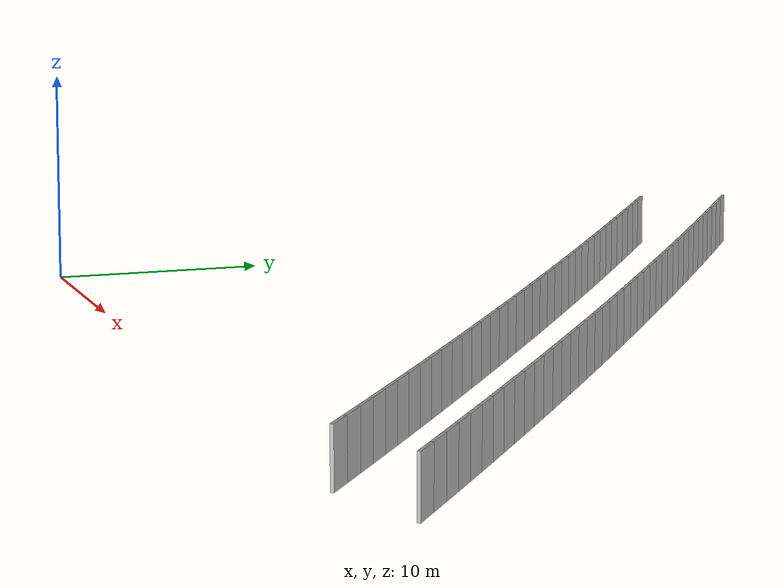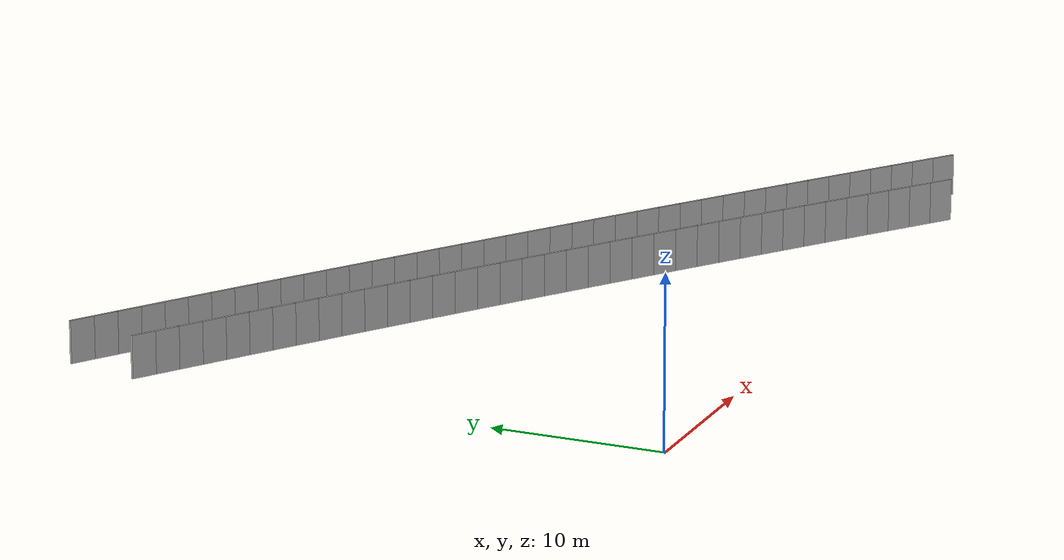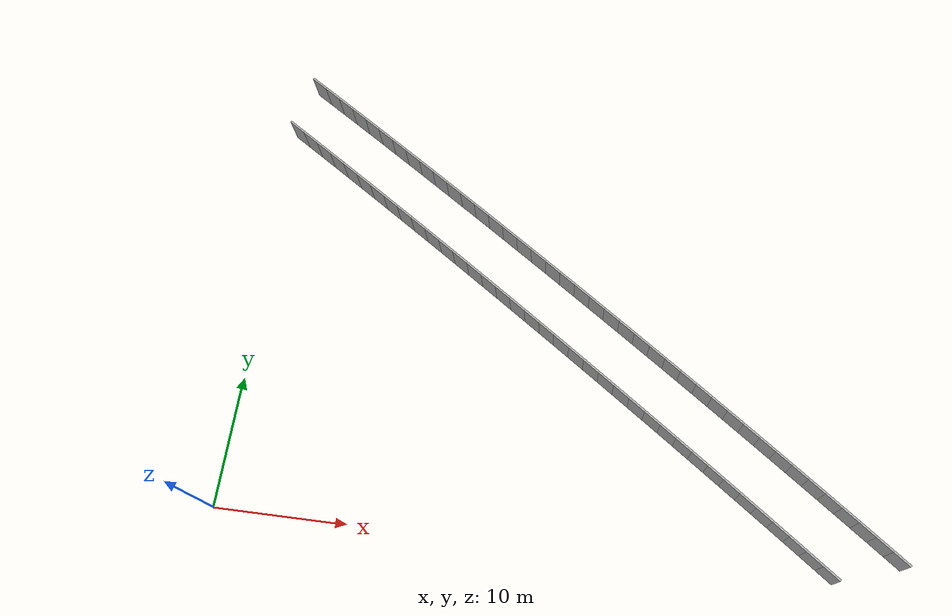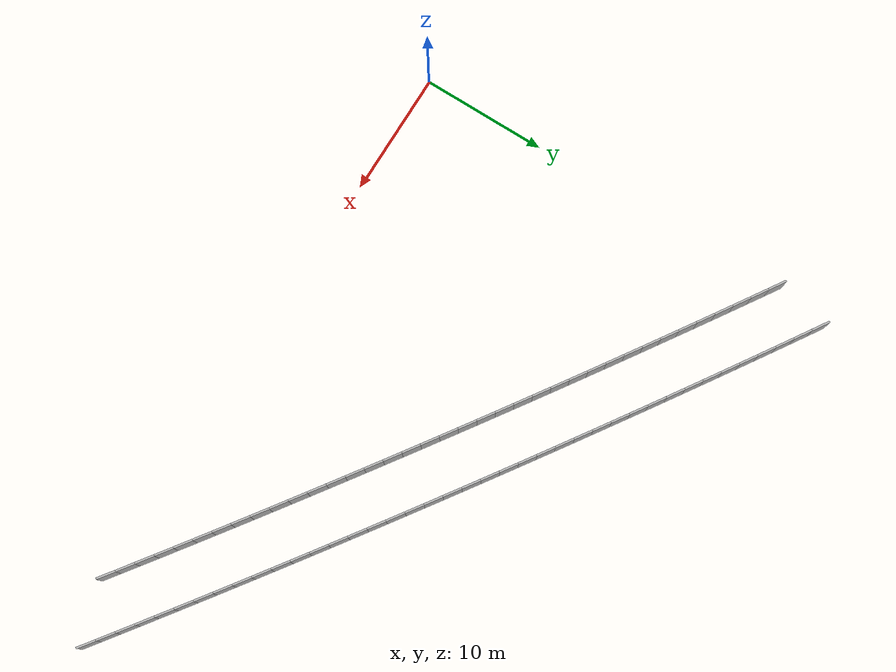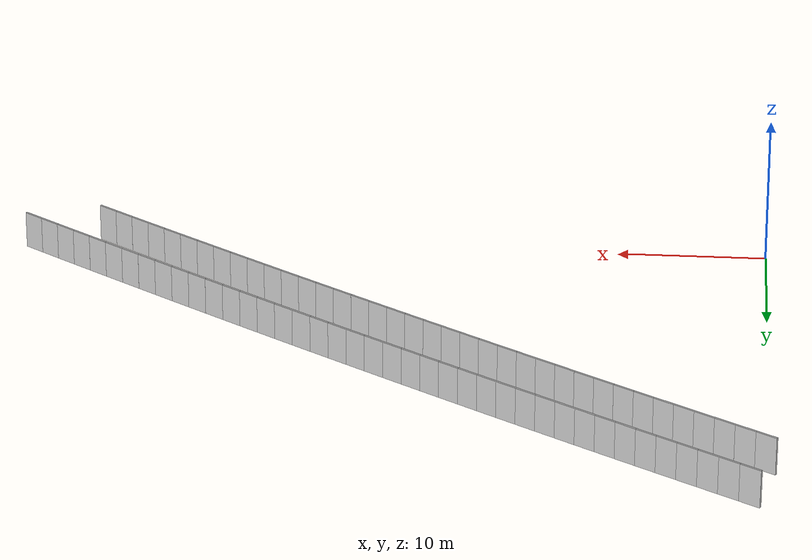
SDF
<?xml version="1.0" ?>
<sdf version="1.6">
  <model name="sps_3743">
    <pose frame="">0 0 0 0 -0 0</pose>
    <static>1</static>
    <self_collide>0</self_collide>
    <allow_auto_disable>0</allow_auto_disable>
    <link name="Wall10517">
      <kinematic>0</kinematic>
      <gravity>1</gravity>
      <self_collide>0</self_collide>
      <collision name="collision">
        <geometry>
          <box>
            <size>1.49651 0.15 2.5</size>
          </box>
        </geometry>
        <pose frame="">0 0 0 0 -0 0</pose>
      </collision>
      <visual name="visual">
        <geometry>
          <box>
            <size>1.49651 0.15 2.5</size>
          </box>
        </geometry>
        <pose frame="">0 0 0 0 -0 0</pose>
        <cast_shadows>1</cast_shadows>
        <transparency>0.0</transparency>
      </visual>
      <pose frame="">44.7234 0.544478 1.25 0 -0 2.51361</pose>
    </link>
    <link name="Wall10518">
      <kinematic>0</kinematic>
      <gravity>1</gravity>
      <self_collide>0</self_collide>
      <collision name="collision">
        <geometry>
          <box>
            <size>1.49657 0.15 2.5</size>
          </box>
        </geometry>
        <pose frame="">0 0 0 0 -0 0</pose>
      </collision>
      <visual name="visual">
        <geometry>
          <box>
            <size>1.49657 0.15 2.5</size>
          </box>
        </geometry>
        <pose frame="">0 0 0 0 -0 0</pose>
        <cast_shadows>1</cast_shadows>
        <transparency>0.0</transparency>
      </visual>
      <pose frame="">43.5117 1.42277 1.25 0 -0 2.51516</pose>
    </link>
    <link name="Wall10519">
      <kinematic>0</kinematic>
      <gravity>1</gravity>
      <self_collide>0</self_collide>
      <collision name="collision">
        <geometry>
          <box>
            <size>1.49641 0.15 2.5</size>
          </box>
        </geometry>
        <pose frame="">0 0 0 0 -0 0</pose>
      </collision>
      <visual name="visual">
        <geometry>
          <box>
            <size>1.49641 0.15 2.5</size>
          </box>
        </geometry>
        <pose frame="">0 0 0 0 -0 0</pose>
        <cast_shadows>1</cast_shadows>
        <transparency>0.0</transparency>
      </visual>
      <pose frame="">42.2987 2.29918 1.25 0 -0 2.51669</pose>
    </link>
    <link name="Wall10520">
      <kinematic>0</kinematic>
      <gravity>1</gravity>
      <self_collide>0</self_collide>
      <collision name="collision">
        <geometry>
          <box>
            <size>1.49652 0.15 2.5</size>
          </box>
        </geometry>
        <pose frame="">0 0 0 0 -0 0</pose>
      </collision>
      <visual name="visual">
        <geometry>
          <box>
            <size>1.49652 0.15 2.5</size>
          </box>
        </geometry>
        <pose frame="">0 0 0 0 -0 0</pose>
        <cast_shadows>1</cast_shadows>
        <transparency>0.0</transparency>
      </visual>
      <pose frame="">41.0843 3.1736 1.25 0 -0 2.5184</pose>
    </link>
    <link name="Wall10521">
      <kinematic>0</kinematic>
      <gravity>1</gravity>
      <self_collide>0</self_collide>
      <collision name="collision">
        <geometry>
          <box>
            <size>1.4966 0.15 2.5</size>
          </box>
        </geometry>
        <pose frame="">0 0 0 0 -0 0</pose>
      </collision>
      <visual name="visual">
        <geometry>
          <box>
            <size>1.4966 0.15 2.5</size>
          </box>
        </geometry>
        <pose frame="">0 0 0 0 -0 0</pose>
        <cast_shadows>1</cast_shadows>
        <transparency>0.0</transparency>
      </visual>
      <pose frame="">39.8683 4.0461 1.25 0 -0 2.51994</pose>
    </link>
    <link name="Wall10522">
      <kinematic>0</kinematic>
      <gravity>1</gravity>
      <self_collide>0</self_collide>
      <collision name="collision">
        <geometry>
          <box>
            <size>1.4964 0.15 2.5</size>
          </box>
        </geometry>
        <pose frame="">0 0 0 0 -0 0</pose>
      </collision>
      <visual name="visual">
        <geometry>
          <box>
            <size>1.4964 0.15 2.5</size>
          </box>
        </geometry>
        <pose frame="">0 0 0 0 -0 0</pose>
        <cast_shadows>1</cast_shadows>
        <transparency>0.0</transparency>
      </visual>
      <pose frame="">38.6511 4.9167 1.25 0 -0 2.52146</pose>
    </link>
    <link name="Wall10523">
      <kinematic>0</kinematic>
      <gravity>1</gravity>
      <self_collide>0</self_collide>
      <collision name="collision">
        <geometry>
          <box>
            <size>1.49654 0.15 2.5</size>
          </box>
        </geometry>
        <pose frame="">0 0 0 0 -0 0</pose>
      </collision>
      <visual name="visual">
        <geometry>
          <box>
            <size>1.49654 0.15 2.5</size>
          </box>
        </geometry>
        <pose frame="">0 0 0 0 -0 0</pose>
        <cast_shadows>1</cast_shadows>
        <transparency>0.0</transparency>
      </visual>
      <pose frame="">37.4325 5.78529 1.25 0 -0 2.52323</pose>
    </link>
    <link name="Wall10524">
      <kinematic>0</kinematic>
      <gravity>1</gravity>
      <self_collide>0</self_collide>
      <collision name="collision">
        <geometry>
          <box>
            <size>1.49656 0.15 2.5</size>
          </box>
        </geometry>
        <pose frame="">0 0 0 0 -0 0</pose>
      </collision>
      <visual name="visual">
        <geometry>
          <box>
            <size>1.49656 0.15 2.5</size>
          </box>
        </geometry>
        <pose frame="">0 0 0 0 -0 0</pose>
        <cast_shadows>1</cast_shadows>
        <transparency>0.0</transparency>
      </visual>
      <pose frame="">36.2126 6.65217 1.25 0 -0 2.52433</pose>
    </link>
    <link name="Wall10525">
      <kinematic>0</kinematic>
      <gravity>1</gravity>
      <self_collide>0</self_collide>
      <collision name="collision">
        <geometry>
          <box>
            <size>1.49648 0.15 2.5</size>
          </box>
        </geometry>
        <pose frame="">0 0 0 0 -0 0</pose>
      </collision>
      <visual name="visual">
        <geometry>
          <box>
            <size>1.49648 0.15 2.5</size>
          </box>
        </geometry>
        <pose frame="">0 0 0 0 -0 0</pose>
        <cast_shadows>1</cast_shadows>
        <transparency>0.0</transparency>
      </visual>
      <pose frame="">34.9914 7.5172 1.25 0 -0 2.52625</pose>
    </link>
    <link name="Wall10526">
      <kinematic>0</kinematic>
      <gravity>1</gravity>
      <self_collide>0</self_collide>
      <collision name="collision">
        <geometry>
          <box>
            <size>1.49657 0.15 2.5</size>
          </box>
        </geometry>
        <pose frame="">0 0 0 0 -0 0</pose>
      </collision>
      <visual name="visual">
        <geometry>
          <box>
            <size>1.49657 0.15 2.5</size>
          </box>
        </geometry>
        <pose frame="">0 0 0 0 -0 0</pose>
        <cast_shadows>1</cast_shadows>
        <transparency>0.0</transparency>
      </visual>
      <pose frame="">33.7688 8.38011 1.25 0 -0 2.52779</pose>
    </link>
    <link name="Wall10527">
      <kinematic>0</kinematic>
      <gravity>1</gravity>
      <self_collide>0</self_collide>
      <collision name="collision">
        <geometry>
          <box>
            <size>1.49645 0.15 2.5</size>
          </box>
        </geometry>
        <pose frame="">0 0 0 0 -0 0</pose>
      </collision>
      <visual name="visual">
        <geometry>
          <box>
            <size>1.49645 0.15 2.5</size>
          </box>
        </geometry>
        <pose frame="">0 0 0 0 -0 0</pose>
        <cast_shadows>1</cast_shadows>
        <transparency>0.0</transparency>
      </visual>
      <pose frame="">32.5447 9.24101 1.25 0 -0 2.52953</pose>
    </link>
    <link name="Wall10528">
      <kinematic>0</kinematic>
      <gravity>1</gravity>
      <self_collide>0</self_collide>
      <collision name="collision">
        <geometry>
          <box>
            <size>1.49651 0.15 2.5</size>
          </box>
        </geometry>
        <pose frame="">0 0 0 0 -0 0</pose>
      </collision>
      <visual name="visual">
        <geometry>
          <box>
            <size>1.49651 0.15 2.5</size>
          </box>
        </geometry>
        <pose frame="">0 0 0 0 -0 0</pose>
        <cast_shadows>1</cast_shadows>
        <transparency>0.0</transparency>
      </visual>
      <pose frame="">31.3193 10.1 1.25 0 -0 2.5309</pose>
    </link>
    <link name="Wall10529">
      <kinematic>0</kinematic>
      <gravity>1</gravity>
      <self_collide>0</self_collide>
      <collision name="collision">
        <geometry>
          <box>
            <size>1.49659 0.15 2.5</size>
          </box>
        </geometry>
        <pose frame="">0 0 0 0 -0 0</pose>
      </collision>
      <visual name="visual">
        <geometry>
          <box>
            <size>1.49659 0.15 2.5</size>
          </box>
        </geometry>
        <pose frame="">0 0 0 0 -0 0</pose>
        <cast_shadows>1</cast_shadows>
        <transparency>0.0</transparency>
      </visual>
      <pose frame="">30.0925 10.9571 1.25 0 -0 2.53267</pose>
    </link>
    <link name="Wall10530">
      <kinematic>0</kinematic>
      <gravity>1</gravity>
      <self_collide>0</self_collide>
      <collision name="collision">
        <geometry>
          <box>
            <size>1.49644 0.15 2.5</size>
          </box>
        </geometry>
        <pose frame="">0 0 0 0 -0 0</pose>
      </collision>
      <visual name="visual">
        <geometry>
          <box>
            <size>1.49644 0.15 2.5</size>
          </box>
        </geometry>
        <pose frame="">0 0 0 0 -0 0</pose>
        <cast_shadows>1</cast_shadows>
        <transparency>0.0</transparency>
      </visual>
      <pose frame="">28.8642 11.8121 1.25 0 -0 2.53424</pose>
    </link>
    <link name="Wall10531">
      <kinematic>0</kinematic>
      <gravity>1</gravity>
      <self_collide>0</self_collide>
      <collision name="collision">
        <geometry>
          <box>
            <size>1.49653 0.15 2.5</size>
          </box>
        </geometry>
        <pose frame="">0 0 0 0 -0 0</pose>
      </collision>
      <visual name="visual">
        <geometry>
          <box>
            <size>1.49653 0.15 2.5</size>
          </box>
        </geometry>
        <pose frame="">0 0 0 0 -0 0</pose>
        <cast_shadows>1</cast_shadows>
        <transparency>0.0</transparency>
      </visual>
      <pose frame="">27.6348 12.6652 1.25 0 -0 2.53573</pose>
    </link>
    <link name="Wall10532">
      <kinematic>0</kinematic>
      <gravity>1</gravity>
      <self_collide>0</self_collide>
      <collision name="collision">
        <geometry>
          <box>
            <size>1.4964 0.15 2.5</size>
          </box>
        </geometry>
        <pose frame="">0 0 0 0 -0 0</pose>
      </collision>
      <visual name="visual">
        <geometry>
          <box>
            <size>1.4964 0.15 2.5</size>
          </box>
        </geometry>
        <pose frame="">0 0 0 0 -0 0</pose>
        <cast_shadows>1</cast_shadows>
        <transparency>0.0</transparency>
      </visual>
      <pose frame="">26.404 13.5164 1.25 0 -0 2.53736</pose>
    </link>
    <link name="Wall10533">
      <kinematic>0</kinematic>
      <gravity>1</gravity>
      <self_collide>0</self_collide>
      <collision name="collision">
        <geometry>
          <box>
            <size>1.49655 0.15 2.5</size>
          </box>
        </geometry>
        <pose frame="">0 0 0 0 -0 0</pose>
      </collision>
      <visual name="visual">
        <geometry>
          <box>
            <size>1.49655 0.15 2.5</size>
          </box>
        </geometry>
        <pose frame="">0 0 0 0 -0 0</pose>
        <cast_shadows>1</cast_shadows>
        <transparency>0.0</transparency>
      </visual>
      <pose frame="">25.1717 14.3656 1.25 0 -0 2.53901</pose>
    </link>
    <link name="Wall10534">
      <kinematic>0</kinematic>
      <gravity>1</gravity>
      <self_collide>0</self_collide>
      <collision name="collision">
        <geometry>
          <box>
            <size>1.49656 0.15 2.5</size>
          </box>
        </geometry>
        <pose frame="">0 0 0 0 -0 0</pose>
      </collision>
      <visual name="visual">
        <geometry>
          <box>
            <size>1.49656 0.15 2.5</size>
          </box>
        </geometry>
        <pose frame="">0 0 0 0 -0 0</pose>
        <cast_shadows>1</cast_shadows>
        <transparency>0.0</transparency>
      </visual>
      <pose frame="">23.9382 15.2129 1.25 0 -0 2.54045</pose>
    </link>
    <link name="Wall10535">
      <kinematic>0</kinematic>
      <gravity>1</gravity>
      <self_collide>0</self_collide>
      <collision name="collision">
        <geometry>
          <box>
            <size>1.49654 0.15 2.5</size>
          </box>
        </geometry>
        <pose frame="">0 0 0 0 -0 0</pose>
      </collision>
      <visual name="visual">
        <geometry>
          <box>
            <size>1.49654 0.15 2.5</size>
          </box>
        </geometry>
        <pose frame="">0 0 0 0 -0 0</pose>
        <cast_shadows>1</cast_shadows>
        <transparency>0.0</transparency>
      </visual>
      <pose frame="">22.7033 16.0583 1.25 0 -0 2.54212</pose>
    </link>
    <link name="Wall10536">
      <kinematic>0</kinematic>
      <gravity>1</gravity>
      <self_collide>0</self_collide>
      <collision name="collision">
        <geometry>
          <box>
            <size>1.49645 0.15 2.5</size>
          </box>
        </geometry>
        <pose frame="">0 0 0 0 -0 0</pose>
      </collision>
      <visual name="visual">
        <geometry>
          <box>
            <size>1.49645 0.15 2.5</size>
          </box>
        </geometry>
        <pose frame="">0 0 0 0 -0 0</pose>
        <cast_shadows>1</cast_shadows>
        <transparency>0.0</transparency>
      </visual>
      <pose frame="">21.4671 16.9017 1.25 0 -0 2.54366</pose>
    </link>
    <link name="Wall10537">
      <kinematic>0</kinematic>
      <gravity>1</gravity>
      <self_collide>0</self_collide>
      <collision name="collision">
        <geometry>
          <box>
            <size>1.49648 0.15 2.5</size>
          </box>
        </geometry>
        <pose frame="">0 0 0 0 -0 0</pose>
      </collision>
      <visual name="visual">
        <geometry>
          <box>
            <size>1.49648 0.15 2.5</size>
          </box>
        </geometry>
        <pose frame="">0 0 0 0 -0 0</pose>
        <cast_shadows>1</cast_shadows>
        <transparency>0.0</transparency>
      </visual>
      <pose frame="">20.2295 17.7431 1.25 0 -0 2.5453</pose>
    </link>
    <link name="Wall10538">
      <kinematic>0</kinematic>
      <gravity>1</gravity>
      <self_collide>0</self_collide>
      <collision name="collision">
        <geometry>
          <box>
            <size>1.4965 0.15 2.5</size>
          </box>
        </geometry>
        <pose frame="">0 0 0 0 -0 0</pose>
      </collision>
      <visual name="visual">
        <geometry>
          <box>
            <size>1.4965 0.15 2.5</size>
          </box>
        </geometry>
        <pose frame="">0 0 0 0 -0 0</pose>
        <cast_shadows>1</cast_shadows>
        <transparency>0.0</transparency>
      </visual>
      <pose frame="">18.9907 18.5825 1.25 0 -0 2.54688</pose>
    </link>
    <link name="Wall10539">
      <kinematic>0</kinematic>
      <gravity>1</gravity>
      <self_collide>0</self_collide>
      <collision name="collision">
        <geometry>
          <box>
            <size>1.49665 0.15 2.5</size>
          </box>
        </geometry>
        <pose frame="">0 0 0 0 -0 0</pose>
      </collision>
      <visual name="visual">
        <geometry>
          <box>
            <size>1.49665 0.15 2.5</size>
          </box>
        </geometry>
        <pose frame="">0 0 0 0 -0 0</pose>
        <cast_shadows>1</cast_shadows>
        <transparency>0.0</transparency>
      </visual>
      <pose frame="">17.7504 19.42 1.25 0 -0 2.54848</pose>
    </link>
    <link name="Wall10540">
      <kinematic>0</kinematic>
      <gravity>1</gravity>
      <self_collide>0</self_collide>
      <collision name="collision">
        <geometry>
          <box>
            <size>1.49642 0.15 2.5</size>
          </box>
        </geometry>
        <pose frame="">0 0 0 0 -0 0</pose>
      </collision>
      <visual name="visual">
        <geometry>
          <box>
            <size>1.49642 0.15 2.5</size>
          </box>
        </geometry>
        <pose frame="">0 0 0 0 -0 0</pose>
        <cast_shadows>1</cast_shadows>
        <transparency>0.0</transparency>
      </visual>
      <pose frame="">16.5088 20.2555 1.25 0 -0 2.55009</pose>
    </link>
    <link name="Wall10541">
      <kinematic>0</kinematic>
      <gravity>1</gravity>
      <self_collide>0</self_collide>
      <collision name="collision">
        <geometry>
          <box>
            <size>1.49641 0.15 2.5</size>
          </box>
        </geometry>
        <pose frame="">0 0 0 0 -0 0</pose>
      </collision>
      <visual name="visual">
        <geometry>
          <box>
            <size>1.49641 0.15 2.5</size>
          </box>
        </geometry>
        <pose frame="">0 0 0 0 -0 0</pose>
        <cast_shadows>1</cast_shadows>
        <transparency>0.0</transparency>
      </visual>
      <pose frame="">15.266 21.089 1.25 0 -0 2.55157</pose>
    </link>
    <link name="Wall10542">
      <kinematic>0</kinematic>
      <gravity>1</gravity>
      <self_collide>0</self_collide>
      <collision name="collision">
        <geometry>
          <box>
            <size>1.49673 0.15 2.5</size>
          </box>
        </geometry>
        <pose frame="">0 0 0 0 -0 0</pose>
      </collision>
      <visual name="visual">
        <geometry>
          <box>
            <size>1.49673 0.15 2.5</size>
          </box>
        </geometry>
        <pose frame="">0 0 0 0 -0 0</pose>
        <cast_shadows>1</cast_shadows>
        <transparency>0.0</transparency>
      </visual>
      <pose frame="">14.0218 21.9208 1.25 0 -0 2.55293</pose>
    </link>
    <link name="Wall10543">
      <kinematic>0</kinematic>
      <gravity>1</gravity>
      <self_collide>0</self_collide>
      <collision name="collision">
        <geometry>
          <box>
            <size>1.49631 0.15 2.5</size>
          </box>
        </geometry>
        <pose frame="">0 0 0 0 -0 0</pose>
      </collision>
      <visual name="visual">
        <geometry>
          <box>
            <size>1.49631 0.15 2.5</size>
          </box>
        </geometry>
        <pose frame="">0 0 0 0 -0 0</pose>
        <cast_shadows>1</cast_shadows>
        <transparency>0.0</transparency>
      </visual>
      <pose frame="">12.7765 22.7506 1.25 0 -0 2.55476</pose>
    </link>
    <link name="Wall10544">
      <kinematic>0</kinematic>
      <gravity>1</gravity>
      <self_collide>0</self_collide>
      <collision name="collision">
        <geometry>
          <box>
            <size>1.49659 0.15 2.5</size>
          </box>
        </geometry>
        <pose frame="">0 0 0 0 -0 0</pose>
      </collision>
      <visual name="visual">
        <geometry>
          <box>
            <size>1.49659 0.15 2.5</size>
          </box>
        </geometry>
        <pose frame="">0 0 0 0 -0 0</pose>
        <cast_shadows>1</cast_shadows>
        <transparency>0.0</transparency>
      </visual>
      <pose frame="">11.5297 23.5783 1.25 0 -0 2.55625</pose>
    </link>
    <link name="Wall10545">
      <kinematic>0</kinematic>
      <gravity>1</gravity>
      <self_collide>0</self_collide>
      <collision name="collision">
        <geometry>
          <box>
            <size>1.49661 0.15 2.5</size>
          </box>
        </geometry>
        <pose frame="">0 0 0 0 -0 0</pose>
      </collision>
      <visual name="visual">
        <geometry>
          <box>
            <size>1.49661 0.15 2.5</size>
          </box>
        </geometry>
        <pose frame="">0 0 0 0 -0 0</pose>
        <cast_shadows>1</cast_shadows>
        <transparency>0.0</transparency>
      </visual>
      <pose frame="">10.2815 24.404 1.25 0 -0 2.55807</pose>
    </link>
    <link name="Wall10546">
      <kinematic>0</kinematic>
      <gravity>1</gravity>
      <self_collide>0</self_collide>
      <collision name="collision">
        <geometry>
          <box>
            <size>1.49637 0.15 2.5</size>
          </box>
        </geometry>
        <pose frame="">0 0 0 0 -0 0</pose>
      </collision>
      <visual name="visual">
        <geometry>
          <box>
            <size>1.49637 0.15 2.5</size>
          </box>
        </geometry>
        <pose frame="">0 0 0 0 -0 0</pose>
        <cast_shadows>1</cast_shadows>
        <transparency>0.0</transparency>
      </visual>
      <pose frame="">9.03207 25.2276 1.25 0 -0 2.55957</pose>
    </link>
    <link name="Wall10547">
      <kinematic>0</kinematic>
      <gravity>1</gravity>
      <self_collide>0</self_collide>
      <collision name="collision">
        <geometry>
          <box>
            <size>1.49657 0.15 2.5</size>
          </box>
        </geometry>
        <pose frame="">0 0 0 0 -0 0</pose>
      </collision>
      <visual name="visual">
        <geometry>
          <box>
            <size>1.49657 0.15 2.5</size>
          </box>
        </geometry>
        <pose frame="">0 0 0 0 -0 0</pose>
        <cast_shadows>1</cast_shadows>
        <transparency>0.0</transparency>
      </visual>
      <pose frame="">7.78136 26.0493 1.25 0 -0 2.56108</pose>
    </link>
    <link name="Wall10548">
      <kinematic>0</kinematic>
      <gravity>1</gravity>
      <self_collide>0</self_collide>
      <collision name="collision">
        <geometry>
          <box>
            <size>1.49654 0.15 2.5</size>
          </box>
        </geometry>
        <pose frame="">0 0 0 0 -0 0</pose>
      </collision>
      <visual name="visual">
        <geometry>
          <box>
            <size>1.49654 0.15 2.5</size>
          </box>
        </geometry>
        <pose frame="">0 0 0 0 -0 0</pose>
        <cast_shadows>1</cast_shadows>
        <transparency>0.0</transparency>
      </visual>
      <pose frame="">6.52926 26.869 1.25 0 -0 2.56282</pose>
    </link>
    <link name="Wall10549">
      <kinematic>0</kinematic>
      <gravity>1</gravity>
      <self_collide>0</self_collide>
      <collision name="collision">
        <geometry>
          <box>
            <size>1.4966 0.15 2.5</size>
          </box>
        </geometry>
        <pose frame="">0 0 0 0 -0 0</pose>
      </collision>
      <visual name="visual">
        <geometry>
          <box>
            <size>1.4966 0.15 2.5</size>
          </box>
        </geometry>
        <pose frame="">0 0 0 0 -0 0</pose>
        <cast_shadows>1</cast_shadows>
        <transparency>0.0</transparency>
      </visual>
      <pose frame="">5.27584 27.6867 1.25 0 -0 2.56426</pose>
    </link>
    <link name="Wall10550">
      <kinematic>0</kinematic>
      <gravity>1</gravity>
      <self_collide>0</self_collide>
      <collision name="collision">
        <geometry>
          <box>
            <size>1.49644 0.15 2.5</size>
          </box>
        </geometry>
        <pose frame="">0 0 0 0 -0 0</pose>
      </collision>
      <visual name="visual">
        <geometry>
          <box>
            <size>1.49644 0.15 2.5</size>
          </box>
        </geometry>
        <pose frame="">0 0 0 0 -0 0</pose>
        <cast_shadows>1</cast_shadows>
        <transparency>0.0</transparency>
      </visual>
      <pose frame="">4.02123 28.5025 1.25 0 -0 2.56584</pose>
    </link>
    <link name="Wall10551">
      <kinematic>0</kinematic>
      <gravity>1</gravity>
      <self_collide>0</self_collide>
      <collision name="collision">
        <geometry>
          <box>
            <size>1.49655 0.15 2.5</size>
          </box>
        </geometry>
        <pose frame="">0 0 0 0 -0 0</pose>
      </collision>
      <visual name="visual">
        <geometry>
          <box>
            <size>1.49655 0.15 2.5</size>
          </box>
        </geometry>
        <pose frame="">0 0 0 0 -0 0</pose>
        <cast_shadows>1</cast_shadows>
        <transparency>0.0</transparency>
      </visual>
      <pose frame="">2.76534 29.3163 1.25 0 -0 2.56745</pose>
    </link>
    <link name="Wall10552">
      <kinematic>0</kinematic>
      <gravity>1</gravity>
      <self_collide>0</self_collide>
      <collision name="collision">
        <geometry>
          <box>
            <size>1.49652 0.15 2.5</size>
          </box>
        </geometry>
        <pose frame="">0 0 0 0 -0 0</pose>
      </collision>
      <visual name="visual">
        <geometry>
          <box>
            <size>1.49652 0.15 2.5</size>
          </box>
        </geometry>
        <pose frame="">0 0 0 0 -0 0</pose>
        <cast_shadows>1</cast_shadows>
        <transparency>0.0</transparency>
      </visual>
      <pose frame="">1.50814 30.1281 1.25 0 -0 2.56899</pose>
    </link>
    <link name="Wall10553">
      <kinematic>0</kinematic>
      <gravity>1</gravity>
      <self_collide>0</self_collide>
      <collision name="collision">
        <geometry>
          <box>
            <size>1.49643 0.15 2.5</size>
          </box>
        </geometry>
        <pose frame="">0 0 0 0 -0 0</pose>
      </collision>
      <visual name="visual">
        <geometry>
          <box>
            <size>1.49643 0.15 2.5</size>
          </box>
        </geometry>
        <pose frame="">0 0 0 0 -0 0</pose>
        <cast_shadows>1</cast_shadows>
        <transparency>0.0</transparency>
      </visual>
      <pose frame="">0.249656 30.9378 1.25 0 -0 2.57074</pose>
    </link>
    <link name="Wall11112">
      <kinematic>0</kinematic>
      <gravity>1</gravity>
      <self_collide>0</self_collide>
      <collision name="collision">
        <geometry>
          <box>
            <size>1.50303 0.15 2.5</size>
          </box>
        </geometry>
        <pose frame="">0 0 0 0 -0 0</pose>
      </collision>
      <visual name="visual">
        <geometry>
          <box>
            <size>1.50303 0.15 2.5</size>
          </box>
        </geometry>
        <pose frame="">0 0 0 0 -0 0</pose>
        <cast_shadows>1</cast_shadows>
        <transparency>0.0</transparency>
      </visual>
      <pose frame="">49.5853 2.1248 1.25 0 -0 2.51034</pose>
    </link>
    <link name="Wall11113">
      <kinematic>0</kinematic>
      <gravity>1</gravity>
      <self_collide>0</self_collide>
      <collision name="collision">
        <geometry>
          <box>
            <size>1.50317 0.15 2.5</size>
          </box>
        </geometry>
        <pose frame="">0 0 0 0 -0 0</pose>
      </collision>
      <visual name="visual">
        <geometry>
          <box>
            <size>1.50317 0.15 2.5</size>
          </box>
        </geometry>
        <pose frame="">0 0 0 0 -0 0</pose>
        <cast_shadows>1</cast_shadows>
        <transparency>0.0</transparency>
      </visual>
      <pose frame="">48.3711 3.01082 1.25 0 -0 2.51207</pose>
    </link>
    <link name="Wall11114">
      <kinematic>0</kinematic>
      <gravity>1</gravity>
      <self_collide>0</self_collide>
      <collision name="collision">
        <geometry>
          <box>
            <size>1.50304 0.15 2.5</size>
          </box>
        </geometry>
        <pose frame="">0 0 0 0 -0 0</pose>
      </collision>
      <visual name="visual">
        <geometry>
          <box>
            <size>1.50304 0.15 2.5</size>
          </box>
        </geometry>
        <pose frame="">0 0 0 0 -0 0</pose>
        <cast_shadows>1</cast_shadows>
        <transparency>0.0</transparency>
      </visual>
      <pose frame="">47.1555 3.89491 1.25 0 -0 2.51351</pose>
    </link>
    <link name="Wall11115">
      <kinematic>0</kinematic>
      <gravity>1</gravity>
      <self_collide>0</self_collide>
      <collision name="collision">
        <geometry>
          <box>
            <size>1.50299 0.15 2.5</size>
          </box>
        </geometry>
        <pose frame="">0 0 0 0 -0 0</pose>
      </collision>
      <visual name="visual">
        <geometry>
          <box>
            <size>1.50299 0.15 2.5</size>
          </box>
        </geometry>
        <pose frame="">0 0 0 0 -0 0</pose>
        <cast_shadows>1</cast_shadows>
        <transparency>0.0</transparency>
      </visual>
      <pose frame="">45.9387 4.77708 1.25 0 -0 2.51514</pose>
    </link>
    <link name="Wall11116">
      <kinematic>0</kinematic>
      <gravity>1</gravity>
      <self_collide>0</self_collide>
      <collision name="collision">
        <geometry>
          <box>
            <size>1.50313 0.15 2.5</size>
          </box>
        </geometry>
        <pose frame="">0 0 0 0 -0 0</pose>
      </collision>
      <visual name="visual">
        <geometry>
          <box>
            <size>1.50313 0.15 2.5</size>
          </box>
        </geometry>
        <pose frame="">0 0 0 0 -0 0</pose>
        <cast_shadows>1</cast_shadows>
        <transparency>0.0</transparency>
      </visual>
      <pose frame="">44.7203 5.65727 1.25 0 -0 2.51681</pose>
    </link>
    <link name="Wall11117">
      <kinematic>0</kinematic>
      <gravity>1</gravity>
      <self_collide>0</self_collide>
      <collision name="collision">
        <geometry>
          <box>
            <size>1.50295 0.15 2.5</size>
          </box>
        </geometry>
        <pose frame="">0 0 0 0 -0 0</pose>
      </collision>
      <visual name="visual">
        <geometry>
          <box>
            <size>1.50295 0.15 2.5</size>
          </box>
        </geometry>
        <pose frame="">0 0 0 0 -0 0</pose>
        <cast_shadows>1</cast_shadows>
        <transparency>0.0</transparency>
      </visual>
      <pose frame="">43.5005 6.53548 1.25 0 -0 2.51837</pose>
    </link>
    <link name="Wall11118">
      <kinematic>0</kinematic>
      <gravity>1</gravity>
      <self_collide>0</self_collide>
      <collision name="collision">
        <geometry>
          <box>
            <size>1.50325 0.15 2.5</size>
          </box>
        </geometry>
        <pose frame="">0 0 0 0 -0 0</pose>
      </collision>
      <visual name="visual">
        <geometry>
          <box>
            <size>1.50325 0.15 2.5</size>
          </box>
        </geometry>
        <pose frame="">0 0 0 0 -0 0</pose>
        <cast_shadows>1</cast_shadows>
        <transparency>0.0</transparency>
      </visual>
      <pose frame="">42.2793 7.41179 1.25 0 -0 2.51997</pose>
    </link>
    <link name="Wall11119">
      <kinematic>0</kinematic>
      <gravity>1</gravity>
      <self_collide>0</self_collide>
      <collision name="collision">
        <geometry>
          <box>
            <size>1.50302 0.15 2.5</size>
          </box>
        </geometry>
        <pose frame="">0 0 0 0 -0 0</pose>
      </collision>
      <visual name="visual">
        <geometry>
          <box>
            <size>1.50302 0.15 2.5</size>
          </box>
        </geometry>
        <pose frame="">0 0 0 0 -0 0</pose>
        <cast_shadows>1</cast_shadows>
        <transparency>0.0</transparency>
      </visual>
      <pose frame="">41.0566 8.28621 1.25 0 -0 2.52151</pose>
    </link>
    <link name="Wall11120">
      <kinematic>0</kinematic>
      <gravity>1</gravity>
      <self_collide>0</self_collide>
      <collision name="collision">
        <geometry>
          <box>
            <size>1.50295 0.15 2.5</size>
          </box>
        </geometry>
        <pose frame="">0 0 0 0 -0 0</pose>
      </collision>
      <visual name="visual">
        <geometry>
          <box>
            <size>1.50295 0.15 2.5</size>
          </box>
        </geometry>
        <pose frame="">0 0 0 0 -0 0</pose>
        <cast_shadows>1</cast_shadows>
        <transparency>0.0</transparency>
      </visual>
      <pose frame="">39.8328 9.15861 1.25 0 -0 2.52312</pose>
    </link>
    <link name="Wall11121">
      <kinematic>0</kinematic>
      <gravity>1</gravity>
      <self_collide>0</self_collide>
      <collision name="collision">
        <geometry>
          <box>
            <size>1.50308 0.15 2.5</size>
          </box>
        </geometry>
        <pose frame="">0 0 0 0 -0 0</pose>
      </collision>
      <visual name="visual">
        <geometry>
          <box>
            <size>1.50308 0.15 2.5</size>
          </box>
        </geometry>
        <pose frame="">0 0 0 0 -0 0</pose>
        <cast_shadows>1</cast_shadows>
        <transparency>0.0</transparency>
      </visual>
      <pose frame="">38.6075 10.0291 1.25 0 -0 2.52468</pose>
    </link>
    <link name="Wall11122">
      <kinematic>0</kinematic>
      <gravity>1</gravity>
      <self_collide>0</self_collide>
      <collision name="collision">
        <geometry>
          <box>
            <size>1.50316 0.15 2.5</size>
          </box>
        </geometry>
        <pose frame="">0 0 0 0 -0 0</pose>
      </collision>
      <visual name="visual">
        <geometry>
          <box>
            <size>1.50316 0.15 2.5</size>
          </box>
        </geometry>
        <pose frame="">0 0 0 0 -0 0</pose>
        <cast_shadows>1</cast_shadows>
        <transparency>0.0</transparency>
      </visual>
      <pose frame="">37.3809 10.8979 1.25 0 -0 2.52601</pose>
    </link>
    <link name="Wall11123">
      <kinematic>0</kinematic>
      <gravity>1</gravity>
      <self_collide>0</self_collide>
      <collision name="collision">
        <geometry>
          <box>
            <size>1.50304 0.15 2.5</size>
          </box>
        </geometry>
        <pose frame="">0 0 0 0 -0 0</pose>
      </collision>
      <visual name="visual">
        <geometry>
          <box>
            <size>1.50304 0.15 2.5</size>
          </box>
        </geometry>
        <pose frame="">0 0 0 0 -0 0</pose>
        <cast_shadows>1</cast_shadows>
        <transparency>0.0</transparency>
      </visual>
      <pose frame="">36.1529 11.7647 1.25 0 -0 2.52789</pose>
    </link>
    <link name="Wall11124">
      <kinematic>0</kinematic>
      <gravity>1</gravity>
      <self_collide>0</self_collide>
      <collision name="collision">
        <geometry>
          <box>
            <size>1.50307 0.15 2.5</size>
          </box>
        </geometry>
        <pose frame="">0 0 0 0 -0 0</pose>
      </collision>
      <visual name="visual">
        <geometry>
          <box>
            <size>1.50307 0.15 2.5</size>
          </box>
        </geometry>
        <pose frame="">0 0 0 0 -0 0</pose>
        <cast_shadows>1</cast_shadows>
        <transparency>0.0</transparency>
      </visual>
      <pose frame="">34.9235 12.6294 1.25 0 -0 2.52934</pose>
    </link>
    <link name="Wall11125">
      <kinematic>0</kinematic>
      <gravity>1</gravity>
      <self_collide>0</self_collide>
      <collision name="collision">
        <geometry>
          <box>
            <size>1.50316 0.15 2.5</size>
          </box>
        </geometry>
        <pose frame="">0 0 0 0 -0 0</pose>
      </collision>
      <visual name="visual">
        <geometry>
          <box>
            <size>1.50316 0.15 2.5</size>
          </box>
        </geometry>
        <pose frame="">0 0 0 0 -0 0</pose>
        <cast_shadows>1</cast_shadows>
        <transparency>0.0</transparency>
      </visual>
      <pose frame="">33.6926 13.4922 1.25 0 -0 2.53102</pose>
    </link>
    <link name="Wall11126">
      <kinematic>0</kinematic>
      <gravity>1</gravity>
      <self_collide>0</self_collide>
      <collision name="collision">
        <geometry>
          <box>
            <size>1.50311 0.15 2.5</size>
          </box>
        </geometry>
        <pose frame="">0 0 0 0 -0 0</pose>
      </collision>
      <visual name="visual">
        <geometry>
          <box>
            <size>1.50311 0.15 2.5</size>
          </box>
        </geometry>
        <pose frame="">0 0 0 0 -0 0</pose>
        <cast_shadows>1</cast_shadows>
        <transparency>0.0</transparency>
      </visual>
      <pose frame="">32.4605 14.3531 1.25 0 -0 2.53248</pose>
    </link>
    <link name="Wall11127">
      <kinematic>0</kinematic>
      <gravity>1</gravity>
      <self_collide>0</self_collide>
      <collision name="collision">
        <geometry>
          <box>
            <size>1.50301 0.15 2.5</size>
          </box>
        </geometry>
        <pose frame="">0 0 0 0 -0 0</pose>
      </collision>
      <visual name="visual">
        <geometry>
          <box>
            <size>1.50301 0.15 2.5</size>
          </box>
        </geometry>
        <pose frame="">0 0 0 0 -0 0</pose>
        <cast_shadows>1</cast_shadows>
        <transparency>0.0</transparency>
      </visual>
      <pose frame="">31.227 15.212 1.25 0 -0 2.53422</pose>
    </link>
    <link name="Wall11128">
      <kinematic>0</kinematic>
      <gravity>1</gravity>
      <self_collide>0</self_collide>
      <collision name="collision">
        <geometry>
          <box>
            <size>1.5031 0.15 2.5</size>
          </box>
        </geometry>
        <pose frame="">0 0 0 0 -0 0</pose>
      </collision>
      <visual name="visual">
        <geometry>
          <box>
            <size>1.5031 0.15 2.5</size>
          </box>
        </geometry>
        <pose frame="">0 0 0 0 -0 0</pose>
        <cast_shadows>1</cast_shadows>
        <transparency>0.0</transparency>
      </visual>
      <pose frame="">29.9921 16.0688 1.25 0 -0 2.53584</pose>
    </link>
    <link name="Wall11129">
      <kinematic>0</kinematic>
      <gravity>1</gravity>
      <self_collide>0</self_collide>
      <collision name="collision">
        <geometry>
          <box>
            <size>1.50316 0.15 2.5</size>
          </box>
        </geometry>
        <pose frame="">0 0 0 0 -0 0</pose>
      </collision>
      <visual name="visual">
        <geometry>
          <box>
            <size>1.50316 0.15 2.5</size>
          </box>
        </geometry>
        <pose frame="">0 0 0 0 -0 0</pose>
        <cast_shadows>1</cast_shadows>
        <transparency>0.0</transparency>
      </visual>
      <pose frame="">28.7557 16.9237 1.25 0 -0 2.53735</pose>
    </link>
    <link name="Wall11130">
      <kinematic>0</kinematic>
      <gravity>1</gravity>
      <self_collide>0</self_collide>
      <collision name="collision">
        <geometry>
          <box>
            <size>1.50317 0.15 2.5</size>
          </box>
        </geometry>
        <pose frame="">0 0 0 0 -0 0</pose>
      </collision>
      <visual name="visual">
        <geometry>
          <box>
            <size>1.50317 0.15 2.5</size>
          </box>
        </geometry>
        <pose frame="">0 0 0 0 -0 0</pose>
        <cast_shadows>1</cast_shadows>
        <transparency>0.0</transparency>
      </visual>
      <pose frame="">27.518 17.7767 1.25 0 -0 2.53898</pose>
    </link>
    <link name="Wall11131">
      <kinematic>0</kinematic>
      <gravity>1</gravity>
      <self_collide>0</self_collide>
      <collision name="collision">
        <geometry>
          <box>
            <size>1.50299 0.15 2.5</size>
          </box>
        </geometry>
        <pose frame="">0 0 0 0 -0 0</pose>
      </collision>
      <visual name="visual">
        <geometry>
          <box>
            <size>1.50299 0.15 2.5</size>
          </box>
        </geometry>
        <pose frame="">0 0 0 0 -0 0</pose>
        <cast_shadows>1</cast_shadows>
        <transparency>0.0</transparency>
      </visual>
      <pose frame="">26.279 18.6277 1.25 0 -0 2.54052</pose>
    </link>
    <link name="Wall11132">
      <kinematic>0</kinematic>
      <gravity>1</gravity>
      <self_collide>0</self_collide>
      <collision name="collision">
        <geometry>
          <box>
            <size>1.50309 0.15 2.5</size>
          </box>
        </geometry>
        <pose frame="">0 0 0 0 -0 0</pose>
      </collision>
      <visual name="visual">
        <geometry>
          <box>
            <size>1.50309 0.15 2.5</size>
          </box>
        </geometry>
        <pose frame="">0 0 0 0 -0 0</pose>
        <cast_shadows>1</cast_shadows>
        <transparency>0.0</transparency>
      </visual>
      <pose frame="">25.0387 19.4767 1.25 0 -0 2.54215</pose>
    </link>
    <link name="Wall11133">
      <kinematic>0</kinematic>
      <gravity>1</gravity>
      <self_collide>0</self_collide>
      <collision name="collision">
        <geometry>
          <box>
            <size>1.50302 0.15 2.5</size>
          </box>
        </geometry>
        <pose frame="">0 0 0 0 -0 0</pose>
      </collision>
      <visual name="visual">
        <geometry>
          <box>
            <size>1.50302 0.15 2.5</size>
          </box>
        </geometry>
        <pose frame="">0 0 0 0 -0 0</pose>
        <cast_shadows>1</cast_shadows>
        <transparency>0.0</transparency>
      </visual>
      <pose frame="">23.7971 20.3238 1.25 0 -0 2.54359</pose>
    </link>
    <link name="Wall11134">
      <kinematic>0</kinematic>
      <gravity>1</gravity>
      <self_collide>0</self_collide>
      <collision name="collision">
        <geometry>
          <box>
            <size>1.50295 0.15 2.5</size>
          </box>
        </geometry>
        <pose frame="">0 0 0 0 -0 0</pose>
      </collision>
      <visual name="visual">
        <geometry>
          <box>
            <size>1.50295 0.15 2.5</size>
          </box>
        </geometry>
        <pose frame="">0 0 0 0 -0 0</pose>
        <cast_shadows>1</cast_shadows>
        <transparency>0.0</transparency>
      </visual>
      <pose frame="">22.5543 21.1689 1.25 0 -0 2.54532</pose>
    </link>
    <link name="Wall11135">
      <kinematic>0</kinematic>
      <gravity>1</gravity>
      <self_collide>0</self_collide>
      <collision name="collision">
        <geometry>
          <box>
            <size>1.50298 0.15 2.5</size>
          </box>
        </geometry>
        <pose frame="">0 0 0 0 -0 0</pose>
      </collision>
      <visual name="visual">
        <geometry>
          <box>
            <size>1.50298 0.15 2.5</size>
          </box>
        </geometry>
        <pose frame="">0 0 0 0 -0 0</pose>
        <cast_shadows>1</cast_shadows>
        <transparency>0.0</transparency>
      </visual>
      <pose frame="">21.31 22.0119 1.25 0 -0 2.54696</pose>
    </link>
    <link name="Wall11136">
      <kinematic>0</kinematic>
      <gravity>1</gravity>
      <self_collide>0</self_collide>
      <collision name="collision">
        <geometry>
          <box>
            <size>1.50325 0.15 2.5</size>
          </box>
        </geometry>
        <pose frame="">0 0 0 0 -0 0</pose>
      </collision>
      <visual name="visual">
        <geometry>
          <box>
            <size>1.50325 0.15 2.5</size>
          </box>
        </geometry>
        <pose frame="">0 0 0 0 -0 0</pose>
        <cast_shadows>1</cast_shadows>
        <transparency>0.0</transparency>
      </visual>
      <pose frame="">20.0643 22.8531 1.25 0 -0 2.54835</pose>
    </link>
    <link name="Wall11137">
      <kinematic>0</kinematic>
      <gravity>1</gravity>
      <self_collide>0</self_collide>
      <collision name="collision">
        <geometry>
          <box>
            <size>1.50304 0.15 2.5</size>
          </box>
        </geometry>
        <pose frame="">0 0 0 0 -0 0</pose>
      </collision>
      <visual name="visual">
        <geometry>
          <box>
            <size>1.50304 0.15 2.5</size>
          </box>
        </geometry>
        <pose frame="">0 0 0 0 -0 0</pose>
        <cast_shadows>1</cast_shadows>
        <transparency>0.0</transparency>
      </visual>
      <pose frame="">18.8173 23.6924 1.25 0 -0 2.55002</pose>
    </link>
    <link name="Wall11138">
      <kinematic>0</kinematic>
      <gravity>1</gravity>
      <self_collide>0</self_collide>
      <collision name="collision">
        <geometry>
          <box>
            <size>1.50307 0.15 2.5</size>
          </box>
        </geometry>
        <pose frame="">0 0 0 0 -0 0</pose>
      </collision>
      <visual name="visual">
        <geometry>
          <box>
            <size>1.50307 0.15 2.5</size>
          </box>
        </geometry>
        <pose frame="">0 0 0 0 -0 0</pose>
        <cast_shadows>1</cast_shadows>
        <transparency>0.0</transparency>
      </visual>
      <pose frame="">17.569 24.5296 1.25 0 -0 2.5516</pose>
    </link>
    <link name="Wall11139">
      <kinematic>0</kinematic>
      <gravity>1</gravity>
      <self_collide>0</self_collide>
      <collision name="collision">
        <geometry>
          <box>
            <size>1.50313 0.15 2.5</size>
          </box>
        </geometry>
        <pose frame="">0 0 0 0 -0 0</pose>
      </collision>
      <visual name="visual">
        <geometry>
          <box>
            <size>1.50313 0.15 2.5</size>
          </box>
        </geometry>
        <pose frame="">0 0 0 0 -0 0</pose>
        <cast_shadows>1</cast_shadows>
        <transparency>0.0</transparency>
      </visual>
      <pose frame="">16.3193 25.3648 1.25 0 -0 2.55329</pose>
    </link>
    <link name="Wall11140">
      <kinematic>0</kinematic>
      <gravity>1</gravity>
      <self_collide>0</self_collide>
      <collision name="collision">
        <geometry>
          <box>
            <size>1.50312 0.15 2.5</size>
          </box>
        </geometry>
        <pose frame="">0 0 0 0 -0 0</pose>
      </collision>
      <visual name="visual">
        <geometry>
          <box>
            <size>1.50312 0.15 2.5</size>
          </box>
        </geometry>
        <pose frame="">0 0 0 0 -0 0</pose>
        <cast_shadows>1</cast_shadows>
        <transparency>0.0</transparency>
      </visual>
      <pose frame="">15.0683 26.1981 1.25 0 -0 2.55469</pose>
    </link>
    <link name="Wall11141">
      <kinematic>0</kinematic>
      <gravity>1</gravity>
      <self_collide>0</self_collide>
      <collision name="collision">
        <geometry>
          <box>
            <size>1.50315 0.15 2.5</size>
          </box>
        </geometry>
        <pose frame="">0 0 0 0 -0 0</pose>
      </collision>
      <visual name="visual">
        <geometry>
          <box>
            <size>1.50315 0.15 2.5</size>
          </box>
        </geometry>
        <pose frame="">0 0 0 0 -0 0</pose>
        <cast_shadows>1</cast_shadows>
        <transparency>0.0</transparency>
      </visual>
      <pose frame="">13.8161 27.0296 1.25 0 -0 2.55612</pose>
    </link>
    <link name="Wall11142">
      <kinematic>0</kinematic>
      <gravity>1</gravity>
      <self_collide>0</self_collide>
      <collision name="collision">
        <geometry>
          <box>
            <size>1.50308 0.15 2.5</size>
          </box>
        </geometry>
        <pose frame="">0 0 0 0 -0 0</pose>
      </collision>
      <visual name="visual">
        <geometry>
          <box>
            <size>1.50308 0.15 2.5</size>
          </box>
        </geometry>
        <pose frame="">0 0 0 0 -0 0</pose>
        <cast_shadows>1</cast_shadows>
        <transparency>0.0</transparency>
      </visual>
      <pose frame="">12.5626 27.8591 1.25 0 -0 2.55789</pose>
    </link>
    <link name="Wall11143">
      <kinematic>0</kinematic>
      <gravity>1</gravity>
      <self_collide>0</self_collide>
      <collision name="collision">
        <geometry>
          <box>
            <size>1.50307 0.15 2.5</size>
          </box>
        </geometry>
        <pose frame="">0 0 0 0 -0 0</pose>
      </collision>
      <visual name="visual">
        <geometry>
          <box>
            <size>1.50307 0.15 2.5</size>
          </box>
        </geometry>
        <pose frame="">0 0 0 0 -0 0</pose>
        <cast_shadows>1</cast_shadows>
        <transparency>0.0</transparency>
      </visual>
      <pose frame="">11.3076 28.6864 1.25 0 -0 2.55959</pose>
    </link>
    <link name="Wall11144">
      <kinematic>0</kinematic>
      <gravity>1</gravity>
      <self_collide>0</self_collide>
      <collision name="collision">
        <geometry>
          <box>
            <size>1.50294 0.15 2.5</size>
          </box>
        </geometry>
        <pose frame="">0 0 0 0 -0 0</pose>
      </collision>
      <visual name="visual">
        <geometry>
          <box>
            <size>1.50294 0.15 2.5</size>
          </box>
        </geometry>
        <pose frame="">0 0 0 0 -0 0</pose>
        <cast_shadows>1</cast_shadows>
        <transparency>0.0</transparency>
      </visual>
      <pose frame="">10.0514 29.5116 1.25 0 -0 2.56114</pose>
    </link>
    <link name="Wall11145">
      <kinematic>0</kinematic>
      <gravity>1</gravity>
      <self_collide>0</self_collide>
      <collision name="collision">
        <geometry>
          <box>
            <size>1.50311 0.15 2.5</size>
          </box>
        </geometry>
        <pose frame="">0 0 0 0 -0 0</pose>
      </collision>
      <visual name="visual">
        <geometry>
          <box>
            <size>1.50311 0.15 2.5</size>
          </box>
        </geometry>
        <pose frame="">0 0 0 0 -0 0</pose>
        <cast_shadows>1</cast_shadows>
        <transparency>0.0</transparency>
      </visual>
      <pose frame="">8.79397 30.3349 1.25 0 -0 2.56267</pose>
    </link>
    <link name="Wall11146">
      <kinematic>0</kinematic>
      <gravity>1</gravity>
      <self_collide>0</self_collide>
      <collision name="collision">
        <geometry>
          <box>
            <size>1.50323 0.15 2.5</size>
          </box>
        </geometry>
        <pose frame="">0 0 0 0 -0 0</pose>
      </collision>
      <visual name="visual">
        <geometry>
          <box>
            <size>1.50323 0.15 2.5</size>
          </box>
        </geometry>
        <pose frame="">0 0 0 0 -0 0</pose>
        <cast_shadows>1</cast_shadows>
        <transparency>0.0</transparency>
      </visual>
      <pose frame="">7.53506 31.1563 1.25 0 -0 2.56432</pose>
    </link>
    <link name="Wall11147">
      <kinematic>0</kinematic>
      <gravity>1</gravity>
      <self_collide>0</self_collide>
      <collision name="collision">
        <geometry>
          <box>
            <size>1.50284 0.15 2.5</size>
          </box>
        </geometry>
        <pose frame="">0 0 0 0 -0 0</pose>
      </collision>
      <visual name="visual">
        <geometry>
          <box>
            <size>1.50284 0.15 2.5</size>
          </box>
        </geometry>
        <pose frame="">0 0 0 0 -0 0</pose>
        <cast_shadows>1</cast_shadows>
        <transparency>0.0</transparency>
      </visual>
      <pose frame="">6.27496 31.9756 1.25 0 -0 2.56585</pose>
    </link>
    <link name="Wall11148">
      <kinematic>0</kinematic>
      <gravity>1</gravity>
      <self_collide>0</self_collide>
      <collision name="collision">
        <geometry>
          <box>
            <size>1.50309 0.15 2.5</size>
          </box>
        </geometry>
        <pose frame="">0 0 0 0 -0 0</pose>
      </collision>
      <visual name="visual">
        <geometry>
          <box>
            <size>1.50309 0.15 2.5</size>
          </box>
        </geometry>
        <pose frame="">0 0 0 0 -0 0</pose>
        <cast_shadows>1</cast_shadows>
        <transparency>0.0</transparency>
      </visual>
      <pose frame="">5.01357 32.7928 1.25 0 -0 2.5676</pose>
    </link>
    <link name="Wall11149">
      <kinematic>0</kinematic>
      <gravity>1</gravity>
      <self_collide>0</self_collide>
      <collision name="collision">
        <geometry>
          <box>
            <size>1.50316 0.15 2.5</size>
          </box>
        </geometry>
        <pose frame="">0 0 0 0 -0 0</pose>
      </collision>
      <visual name="visual">
        <geometry>
          <box>
            <size>1.50316 0.15 2.5</size>
          </box>
        </geometry>
        <pose frame="">0 0 0 0 -0 0</pose>
        <cast_shadows>1</cast_shadows>
        <transparency>0.0</transparency>
      </visual>
      <pose frame="">3.75075 33.6081 1.25 0 -0 2.56903</pose>
    </link>
    <link name="Wall11150">
      <kinematic>0</kinematic>
      <gravity>1</gravity>
      <self_collide>0</self_collide>
      <collision name="collision">
        <geometry>
          <box>
            <size>1.50294 0.15 2.5</size>
          </box>
        </geometry>
        <pose frame="">0 0 0 0 -0 0</pose>
      </collision>
      <visual name="visual">
        <geometry>
          <box>
            <size>1.50294 0.15 2.5</size>
          </box>
        </geometry>
        <pose frame="">0 0 0 0 -0 0</pose>
        <cast_shadows>1</cast_shadows>
        <transparency>0.0</transparency>
      </visual>
      <pose frame="">2.48675 34.4214 1.25 0 -0 2.57068</pose>
    </link>
    <link name="Wall11151">
      <kinematic>0</kinematic>
      <gravity>1</gravity>
      <self_collide>0</self_collide>
      <collision name="collision">
        <geometry>
          <box>
            <size>1.50317 0.15 2.5</size>
          </box>
        </geometry>
        <pose frame="">0 0 0 0 -0 0</pose>
      </collision>
      <visual name="visual">
        <geometry>
          <box>
            <size>1.50317 0.15 2.5</size>
          </box>
        </geometry>
        <pose frame="">0 0 0 0 -0 0</pose>
        <cast_shadows>1</cast_shadows>
        <transparency>0.0</transparency>
      </visual>
      <pose frame="">1.22146 35.2327 1.25 0 -0 2.57217</pose>
    </link>
  </model>
</sdf>
